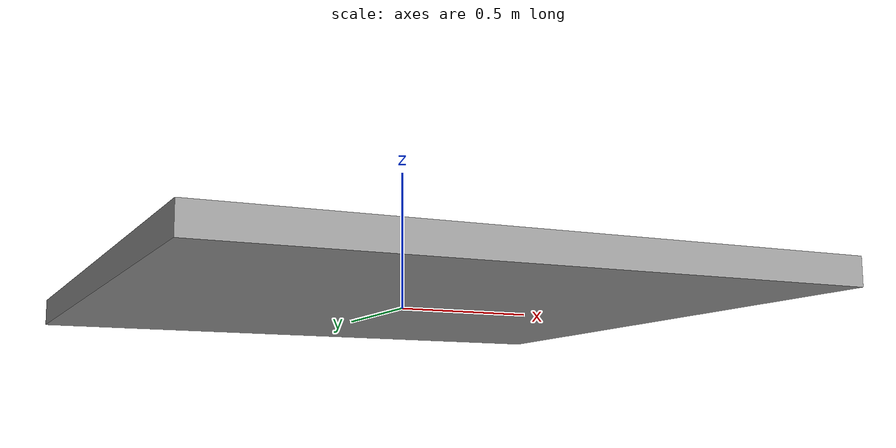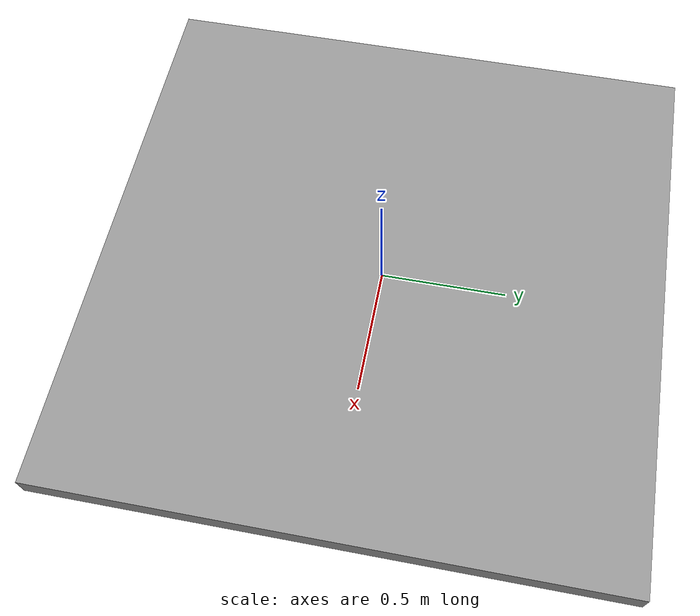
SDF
<?xml version='1.0'?>
<sdf version='1.6'>
  <model name='2.2ceiling'>
    <pose frame=''>0 0 0 0 -0 0</pose>
    <link name='Wall_175'>
      <collision name='Wall_175_Collision'>
        <geometry>
          <box>
            <size>2.21 2.2 0.1</size>
          </box>
        </geometry>
        <pose frame=''>0 0 0.05 0 -0 0</pose>
      </collision>
      <visual name='Wall_175_Visual'>
        <pose frame=''>0 0 0.05 0 -0 0</pose>
        <geometry>
          <box>
            <size>2.21 2.2 0.1</size>
          </box>
        </geometry>
        <material>
          <script>
            <uri>file://media/materials/scripts/gazebo.material</uri>
            <name>Gazebo/Grey</name>
          </script>
          <ambient>1 1 1 1</ambient>
        </material>
        <meta>
          <layer>0</layer>
        </meta>
      </visual>
      <pose frame=''>-0 0 0 0 -0 -1.5708</pose>
    </link>
    <static>1</static>
  </model>
</sdf>
